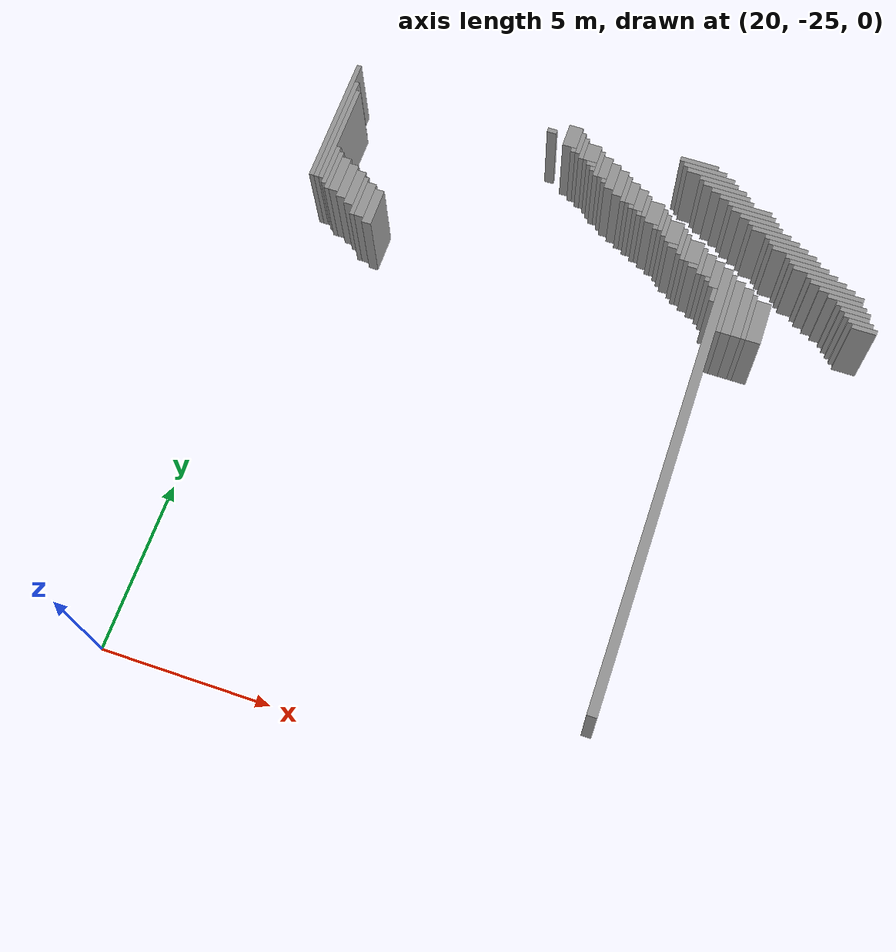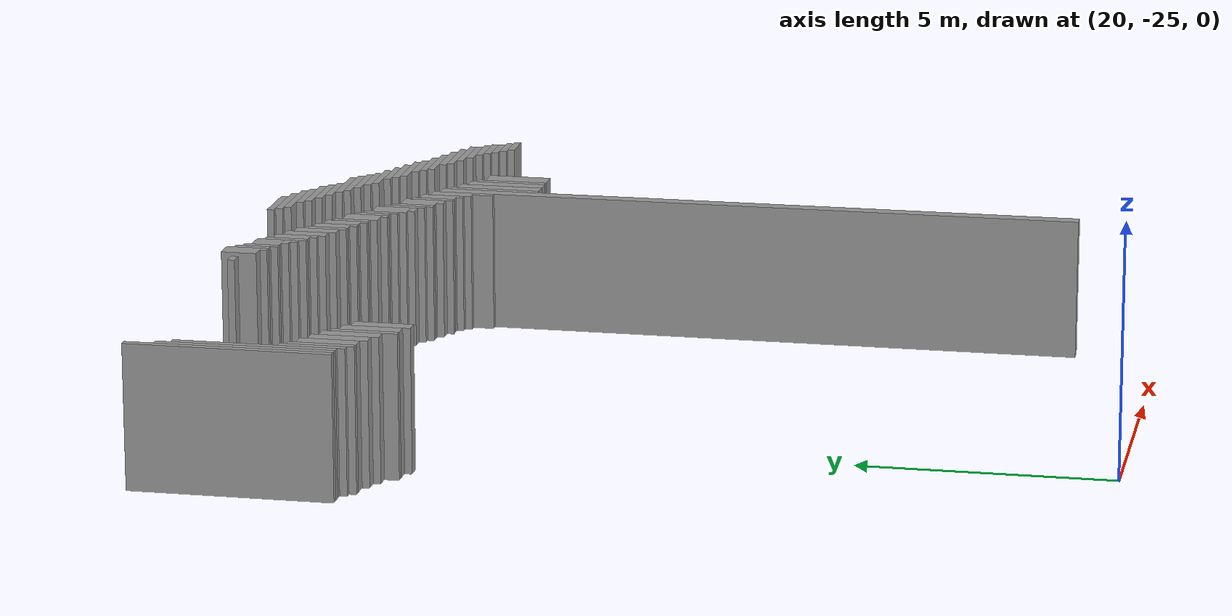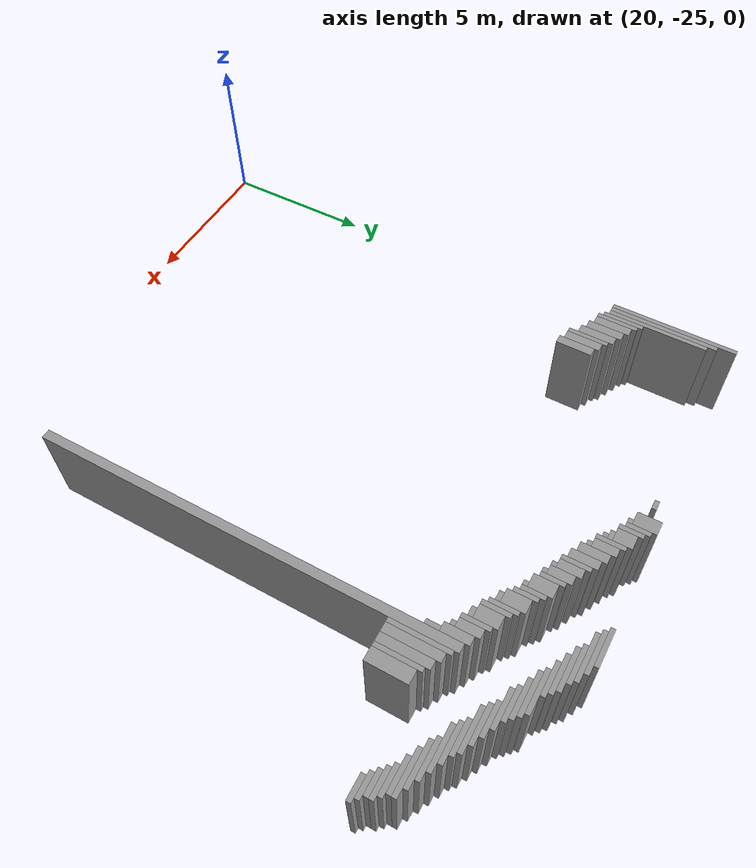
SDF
<sdf version="1.4">
 <model name="FunWorld1">
  <static>1</static>
  <link name="Wall_78">
   <collision name="Wall_78_Collision">
    <geometry><box><size>0.15000 4.20000 3.00000</size></box></geometry>
    <pose>20.47500 -7.65000 0 0 0 0.00000</pose>
   </collision>
   <visual name="Wall_78_Visual">
    <geometry><box><size>0.15000 4.20000 3.00000</size></box></geometry>
    <material>
     <script><uri>file://media/materials/scripts/gazebo.material</uri><name>Gazebo/Grey</name></script>
    </material>
    <pose>20.47500 -7.65000 0 0 0 0.00000</pose>
   </visual>
  </link>
  <link name="Wall_79">
   <collision name="Wall_79_Collision">
    <geometry><box><size>0.45000 0.75000 3.00000</size></box></geometry>
    <pose>27.67500 -5.92500 0 0 0 0.00000</pose>
   </collision>
   <visual name="Wall_79_Visual">
    <geometry><box><size>0.45000 0.75000 3.00000</size></box></geometry>
    <material>
     <script><uri>file://media/materials/scripts/gazebo.material</uri><name>Gazebo/Grey</name></script>
    </material>
    <pose>27.67500 -5.92500 0 0 0 0.00000</pose>
   </visual>
  </link>
  <link name="Wall_80">
   <collision name="Wall_80_Collision">
    <geometry><box><size>1.20000 0.15000 3.00000</size></box></geometry>
    <pose>31.65000 -5.62500 0 0 0 0.00000</pose>
   </collision>
   <visual name="Wall_80_Visual">
    <geometry><box><size>1.20000 0.15000 3.00000</size></box></geometry>
    <material>
     <script><uri>file://media/materials/scripts/gazebo.material</uri><name>Gazebo/Grey</name></script>
    </material>
    <pose>31.65000 -5.62500 0 0 0 0.00000</pose>
   </visual>
  </link>
  <link name="Wall_81">
   <collision name="Wall_81_Collision">
    <geometry><box><size>0.15000 0.75000 3.00000</size></box></geometry>
    <pose>27.97500 -6.07500 0 0 0 0.00000</pose>
   </collision>
   <visual name="Wall_81_Visual">
    <geometry><box><size>0.15000 0.75000 3.00000</size></box></geometry>
    <material>
     <script><uri>file://media/materials/scripts/gazebo.material</uri><name>Gazebo/Grey</name></script>
    </material>
    <pose>27.97500 -6.07500 0 0 0 0.00000</pose>
   </visual>
  </link>
  <link name="Wall_82">
   <collision name="Wall_82_Collision">
    <geometry><box><size>1.35000 0.15000 3.00000</size></box></geometry>
    <pose>31.87500 -5.77500 0 0 0 0.00000</pose>
   </collision>
   <visual name="Wall_82_Visual">
    <geometry><box><size>1.35000 0.15000 3.00000</size></box></geometry>
    <material>
     <script><uri>file://media/materials/scripts/gazebo.material</uri><name>Gazebo/Grey</name></script>
    </material>
    <pose>31.87500 -5.77500 0 0 0 0.00000</pose>
   </visual>
  </link>
  <link name="Wall_83">
   <collision name="Wall_83_Collision">
    <geometry><box><size>0.30000 0.15000 3.00000</size></box></geometry>
    <pose>27.00000 -5.92500 0 0 0 0.00000</pose>
   </collision>
   <visual name="Wall_83_Visual">
    <geometry><box><size>0.30000 0.15000 3.00000</size></box></geometry>
    <material>
     <script><uri>file://media/materials/scripts/gazebo.material</uri><name>Gazebo/Grey</name></script>
    </material>
    <pose>27.00000 -5.92500 0 0 0 0.00000</pose>
   </visual>
  </link>
  <link name="Wall_84">
   <collision name="Wall_84_Collision">
    <geometry><box><size>0.15000 0.75000 3.00000</size></box></geometry>
    <pose>28.12500 -6.22500 0 0 0 0.00000</pose>
   </collision>
   <visual name="Wall_84_Visual">
    <geometry><box><size>0.15000 0.75000 3.00000</size></box></geometry>
    <material>
     <script><uri>file://media/materials/scripts/gazebo.material</uri><name>Gazebo/Grey</name></script>
    </material>
    <pose>28.12500 -6.22500 0 0 0 0.00000</pose>
   </visual>
  </link>
  <link name="Wall_85">
   <collision name="Wall_85_Collision">
    <geometry><box><size>1.50000 0.15000 3.00000</size></box></geometry>
    <pose>32.10000 -5.92500 0 0 0 0.00000</pose>
   </collision>
   <visual name="Wall_85_Visual">
    <geometry><box><size>1.50000 0.15000 3.00000</size></box></geometry>
    <material>
     <script><uri>file://media/materials/scripts/gazebo.material</uri><name>Gazebo/Grey</name></script>
    </material>
    <pose>32.10000 -5.92500 0 0 0 0.00000</pose>
   </visual>
  </link>
  <link name="Wall_86">
   <collision name="Wall_86_Collision">
    <geometry><box><size>0.45000 0.60000 3.00000</size></box></geometry>
    <pose>28.42500 -6.30000 0 0 0 0.00000</pose>
   </collision>
   <visual name="Wall_86_Visual">
    <geometry><box><size>0.45000 0.60000 3.00000</size></box></geometry>
    <material>
     <script><uri>file://media/materials/scripts/gazebo.material</uri><name>Gazebo/Grey</name></script>
    </material>
    <pose>28.42500 -6.30000 0 0 0 0.00000</pose>
   </visual>
  </link>
  <link name="Wall_87">
   <collision name="Wall_87_Collision">
    <geometry><box><size>1.20000 0.15000 3.00000</size></box></geometry>
    <pose>32.40000 -6.07500 0 0 0 0.00000</pose>
   </collision>
   <visual name="Wall_87_Visual">
    <geometry><box><size>1.20000 0.15000 3.00000</size></box></geometry>
    <material>
     <script><uri>file://media/materials/scripts/gazebo.material</uri><name>Gazebo/Grey</name></script>
    </material>
    <pose>32.40000 -6.07500 0 0 0 0.00000</pose>
   </visual>
  </link>
  <link name="Wall_88">
   <collision name="Wall_88_Collision">
    <geometry><box><size>0.15000 3.60000 3.00000</size></box></geometry>
    <pose>20.62500 -7.95000 0 0 0 0.00000</pose>
   </collision>
   <visual name="Wall_88_Visual">
    <geometry><box><size>0.15000 3.60000 3.00000</size></box></geometry>
    <material>
     <script><uri>file://media/materials/scripts/gazebo.material</uri><name>Gazebo/Grey</name></script>
    </material>
    <pose>20.62500 -7.95000 0 0 0 0.00000</pose>
   </visual>
  </link>
  <link name="Wall_89">
   <collision name="Wall_89_Collision">
    <geometry><box><size>0.15000 0.90000 3.00000</size></box></geometry>
    <pose>28.72500 -6.60000 0 0 0 0.00000</pose>
   </collision>
   <visual name="Wall_89_Visual">
    <geometry><box><size>0.15000 0.90000 3.00000</size></box></geometry>
    <material>
     <script><uri>file://media/materials/scripts/gazebo.material</uri><name>Gazebo/Grey</name></script>
    </material>
    <pose>28.72500 -6.60000 0 0 0 0.00000</pose>
   </visual>
  </link>
  <link name="Wall_90">
   <collision name="Wall_90_Collision">
    <geometry><box><size>1.35000 0.15000 3.00000</size></box></geometry>
    <pose>32.62500 -6.22500 0 0 0 0.00000</pose>
   </collision>
   <visual name="Wall_90_Visual">
    <geometry><box><size>1.35000 0.15000 3.00000</size></box></geometry>
    <material>
     <script><uri>file://media/materials/scripts/gazebo.material</uri><name>Gazebo/Grey</name></script>
    </material>
    <pose>32.62500 -6.22500 0 0 0 0.00000</pose>
   </visual>
  </link>
  <link name="Wall_91">
   <collision name="Wall_91_Collision">
    <geometry><box><size>0.15000 0.15000 3.00000</size></box></geometry>
    <pose>27.82500 -6.37500 0 0 0 0.00000</pose>
   </collision>
   <visual name="Wall_91_Visual">
    <geometry><box><size>0.15000 0.15000 3.00000</size></box></geometry>
    <material>
     <script><uri>file://media/materials/scripts/gazebo.material</uri><name>Gazebo/Grey</name></script>
    </material>
    <pose>27.82500 -6.37500 0 0 0 0.00000</pose>
   </visual>
  </link>
  <link name="Wall_92">
   <collision name="Wall_92_Collision">
    <geometry><box><size>0.30000 0.75000 3.00000</size></box></geometry>
    <pose>28.95000 -6.67500 0 0 0 0.00000</pose>
   </collision>
   <visual name="Wall_92_Visual">
    <geometry><box><size>0.30000 0.75000 3.00000</size></box></geometry>
    <material>
     <script><uri>file://media/materials/scripts/gazebo.material</uri><name>Gazebo/Grey</name></script>
    </material>
    <pose>28.95000 -6.67500 0 0 0 0.00000</pose>
   </visual>
  </link>
  <link name="Wall_93">
   <collision name="Wall_93_Collision">
    <geometry><box><size>1.20000 0.15000 3.00000</size></box></geometry>
    <pose>32.85000 -6.37500 0 0 0 0.00000</pose>
   </collision>
   <visual name="Wall_93_Visual">
    <geometry><box><size>1.20000 0.15000 3.00000</size></box></geometry>
    <material>
     <script><uri>file://media/materials/scripts/gazebo.material</uri><name>Gazebo/Grey</name></script>
    </material>
    <pose>32.85000 -6.37500 0 0 0 0.00000</pose>
   </visual>
  </link>
  <link name="Wall_94">
   <collision name="Wall_94_Collision">
    <geometry><box><size>0.15000 3.30000 3.00000</size></box></geometry>
    <pose>20.77500 -8.10000 0 0 0 0.00000</pose>
   </collision>
   <visual name="Wall_94_Visual">
    <geometry><box><size>0.15000 3.30000 3.00000</size></box></geometry>
    <material>
     <script><uri>file://media/materials/scripts/gazebo.material</uri><name>Gazebo/Grey</name></script>
    </material>
    <pose>20.77500 -8.10000 0 0 0 0.00000</pose>
   </visual>
  </link>
  <link name="Wall_95">
   <collision name="Wall_95_Collision">
    <geometry><box><size>0.30000 0.90000 3.00000</size></box></geometry>
    <pose>29.25000 -6.90000 0 0 0 0.00000</pose>
   </collision>
   <visual name="Wall_95_Visual">
    <geometry><box><size>0.30000 0.90000 3.00000</size></box></geometry>
    <material>
     <script><uri>file://media/materials/scripts/gazebo.material</uri><name>Gazebo/Grey</name></script>
    </material>
    <pose>29.25000 -6.90000 0 0 0 0.00000</pose>
   </visual>
  </link>
  <link name="Wall_96">
   <collision name="Wall_96_Collision">
    <geometry><box><size>1.05000 0.15000 3.00000</size></box></geometry>
    <pose>33.07500 -6.52500 0 0 0 0.00000</pose>
   </collision>
   <visual name="Wall_96_Visual">
    <geometry><box><size>1.05000 0.15000 3.00000</size></box></geometry>
    <material>
     <script><uri>file://media/materials/scripts/gazebo.material</uri><name>Gazebo/Grey</name></script>
    </material>
    <pose>33.07500 -6.52500 0 0 0 0.00000</pose>
   </visual>
  </link>
  <link name="Wall_97">
   <collision name="Wall_97_Collision">
    <geometry><box><size>0.30000 0.15000 3.00000</size></box></geometry>
    <pose>28.50000 -6.67500 0 0 0 0.00000</pose>
   </collision>
   <visual name="Wall_97_Visual">
    <geometry><box><size>0.30000 0.15000 3.00000</size></box></geometry>
    <material>
     <script><uri>file://media/materials/scripts/gazebo.material</uri><name>Gazebo/Grey</name></script>
    </material>
    <pose>28.50000 -6.67500 0 0 0 0.00000</pose>
   </visual>
  </link>
  <link name="Wall_98">
   <collision name="Wall_98_Collision">
    <geometry><box><size>0.30000 0.90000 3.00000</size></box></geometry>
    <pose>29.55000 -7.05000 0 0 0 0.00000</pose>
   </collision>
   <visual name="Wall_98_Visual">
    <geometry><box><size>0.30000 0.90000 3.00000</size></box></geometry>
    <material>
     <script><uri>file://media/materials/scripts/gazebo.material</uri><name>Gazebo/Grey</name></script>
    </material>
    <pose>29.55000 -7.05000 0 0 0 0.00000</pose>
   </visual>
  </link>
  <link name="Wall_99">
   <collision name="Wall_99_Collision">
    <geometry><box><size>1.35000 0.15000 3.00000</size></box></geometry>
    <pose>33.52500 -6.67500 0 0 0 0.00000</pose>
   </collision>
   <visual name="Wall_99_Visual">
    <geometry><box><size>1.35000 0.15000 3.00000</size></box></geometry>
    <material>
     <script><uri>file://media/materials/scripts/gazebo.material</uri><name>Gazebo/Grey</name></script>
    </material>
    <pose>33.52500 -6.67500 0 0 0 0.00000</pose>
   </visual>
  </link>
  <link name="Wall_100">
   <collision name="Wall_100_Collision">
    <geometry><box><size>0.15000 0.15000 3.00000</size></box></geometry>
    <pose>28.57500 -6.82500 0 0 0 0.00000</pose>
   </collision>
   <visual name="Wall_100_Visual">
    <geometry><box><size>0.15000 0.15000 3.00000</size></box></geometry>
    <material>
     <script><uri>file://media/materials/scripts/gazebo.material</uri><name>Gazebo/Grey</name></script>
    </material>
    <pose>28.57500 -6.82500 0 0 0 0.00000</pose>
   </visual>
  </link>
  <link name="Wall_101">
   <collision name="Wall_101_Collision">
    <geometry><box><size>0.15000 0.90000 3.00000</size></box></geometry>
    <pose>29.77500 -7.20000 0 0 0 0.00000</pose>
   </collision>
   <visual name="Wall_101_Visual">
    <geometry><box><size>0.15000 0.90000 3.00000</size></box></geometry>
    <material>
     <script><uri>file://media/materials/scripts/gazebo.material</uri><name>Gazebo/Grey</name></script>
    </material>
    <pose>29.77500 -7.20000 0 0 0 0.00000</pose>
   </visual>
  </link>
  <link name="Wall_102">
   <collision name="Wall_102_Collision">
    <geometry><box><size>1.35000 0.15000 3.00000</size></box></geometry>
    <pose>33.67500 -6.82500 0 0 0 0.00000</pose>
   </collision>
   <visual name="Wall_102_Visual">
    <geometry><box><size>1.35000 0.15000 3.00000</size></box></geometry>
    <material>
     <script><uri>file://media/materials/scripts/gazebo.material</uri><name>Gazebo/Grey</name></script>
    </material>
    <pose>33.67500 -6.82500 0 0 0 0.00000</pose>
   </visual>
  </link>
  <link name="Wall_103">
   <collision name="Wall_103_Collision">
    <geometry><box><size>0.30000 0.75000 3.00000</size></box></geometry>
    <pose>30.00000 -7.27500 0 0 0 0.00000</pose>
   </collision>
   <visual name="Wall_103_Visual">
    <geometry><box><size>0.30000 0.75000 3.00000</size></box></geometry>
    <material>
     <script><uri>file://media/materials/scripts/gazebo.material</uri><name>Gazebo/Grey</name></script>
    </material>
    <pose>30.00000 -7.27500 0 0 0 0.00000</pose>
   </visual>
  </link>
  <link name="Wall_104">
   <collision name="Wall_104_Collision">
    <geometry><box><size>1.20000 0.15000 3.00000</size></box></geometry>
    <pose>33.90000 -6.97500 0 0 0 0.00000</pose>
   </collision>
   <visual name="Wall_104_Visual">
    <geometry><box><size>1.20000 0.15000 3.00000</size></box></geometry>
    <material>
     <script><uri>file://media/materials/scripts/gazebo.material</uri><name>Gazebo/Grey</name></script>
    </material>
    <pose>33.90000 -6.97500 0 0 0 0.00000</pose>
   </visual>
  </link>
  <link name="Wall_105">
   <collision name="Wall_105_Collision">
    <geometry><box><size>0.15000 0.15000 3.00000</size></box></geometry>
    <pose>29.02500 -7.12500 0 0 0 0.00000</pose>
   </collision>
   <visual name="Wall_105_Visual">
    <geometry><box><size>0.15000 0.15000 3.00000</size></box></geometry>
    <material>
     <script><uri>file://media/materials/scripts/gazebo.material</uri><name>Gazebo/Grey</name></script>
    </material>
    <pose>29.02500 -7.12500 0 0 0 0.00000</pose>
   </visual>
  </link>
  <link name="Wall_106">
   <collision name="Wall_106_Collision">
    <geometry><box><size>0.30000 0.75000 3.00000</size></box></geometry>
    <pose>30.30000 -7.42500 0 0 0 0.00000</pose>
   </collision>
   <visual name="Wall_106_Visual">
    <geometry><box><size>0.30000 0.75000 3.00000</size></box></geometry>
    <material>
     <script><uri>file://media/materials/scripts/gazebo.material</uri><name>Gazebo/Grey</name></script>
    </material>
    <pose>30.30000 -7.42500 0 0 0 0.00000</pose>
   </visual>
  </link>
  <link name="Wall_107">
   <collision name="Wall_107_Collision">
    <geometry><box><size>1.05000 0.15000 3.00000</size></box></geometry>
    <pose>34.12500 -7.12500 0 0 0 0.00000</pose>
   </collision>
   <visual name="Wall_107_Visual">
    <geometry><box><size>1.05000 0.15000 3.00000</size></box></geometry>
    <material>
     <script><uri>file://media/materials/scripts/gazebo.material</uri><name>Gazebo/Grey</name></script>
    </material>
    <pose>34.12500 -7.12500 0 0 0 0.00000</pose>
   </visual>
  </link>
  <link name="Wall_108">
   <collision name="Wall_108_Collision">
    <geometry><box><size>0.15000 0.75000 3.00000</size></box></geometry>
    <pose>30.52500 -7.57500 0 0 0 0.00000</pose>
   </collision>
   <visual name="Wall_108_Visual">
    <geometry><box><size>0.15000 0.75000 3.00000</size></box></geometry>
    <material>
     <script><uri>file://media/materials/scripts/gazebo.material</uri><name>Gazebo/Grey</name></script>
    </material>
    <pose>30.52500 -7.57500 0 0 0 0.00000</pose>
   </visual>
  </link>
  <link name="Wall_109">
   <collision name="Wall_109_Collision">
    <geometry><box><size>1.20000 0.15000 3.00000</size></box></geometry>
    <pose>34.35000 -7.27500 0 0 0 0.00000</pose>
   </collision>
   <visual name="Wall_109_Visual">
    <geometry><box><size>1.20000 0.15000 3.00000</size></box></geometry>
    <material>
     <script><uri>file://media/materials/scripts/gazebo.material</uri><name>Gazebo/Grey</name></script>
    </material>
    <pose>34.35000 -7.27500 0 0 0 0.00000</pose>
   </visual>
  </link>
  <link name="Wall_110">
   <collision name="Wall_110_Collision">
    <geometry><box><size>0.45000 0.75000 3.00000</size></box></geometry>
    <pose>30.82500 -7.72500 0 0 0 0.00000</pose>
   </collision>
   <visual name="Wall_110_Visual">
    <geometry><box><size>0.45000 0.75000 3.00000</size></box></geometry>
    <material>
     <script><uri>file://media/materials/scripts/gazebo.material</uri><name>Gazebo/Grey</name></script>
    </material>
    <pose>30.82500 -7.72500 0 0 0 0.00000</pose>
   </visual>
  </link>
  <link name="Wall_111">
   <collision name="Wall_111_Collision">
    <geometry><box><size>1.05000 0.15000 3.00000</size></box></geometry>
    <pose>34.72500 -7.42500 0 0 0 0.00000</pose>
   </collision>
   <visual name="Wall_111_Visual">
    <geometry><box><size>1.05000 0.15000 3.00000</size></box></geometry>
    <material>
     <script><uri>file://media/materials/scripts/gazebo.material</uri><name>Gazebo/Grey</name></script>
    </material>
    <pose>34.72500 -7.42500 0 0 0 0.00000</pose>
   </visual>
  </link>
  <link name="Wall_112">
   <collision name="Wall_112_Collision">
    <geometry><box><size>0.15000 0.75000 3.00000</size></box></geometry>
    <pose>31.12500 -7.87500 0 0 0 0.00000</pose>
   </collision>
   <visual name="Wall_112_Visual">
    <geometry><box><size>0.15000 0.75000 3.00000</size></box></geometry>
    <material>
     <script><uri>file://media/materials/scripts/gazebo.material</uri><name>Gazebo/Grey</name></script>
    </material>
    <pose>31.12500 -7.87500 0 0 0 0.00000</pose>
   </visual>
  </link>
  <link name="Wall_113">
   <collision name="Wall_113_Collision">
    <geometry><box><size>1.20000 0.15000 3.00000</size></box></geometry>
    <pose>34.95000 -7.57500 0 0 0 0.00000</pose>
   </collision>
   <visual name="Wall_113_Visual">
    <geometry><box><size>1.20000 0.15000 3.00000</size></box></geometry>
    <material>
     <script><uri>file://media/materials/scripts/gazebo.material</uri><name>Gazebo/Grey</name></script>
    </material>
    <pose>34.95000 -7.57500 0 0 0 0.00000</pose>
   </visual>
  </link>
  <link name="Wall_114">
   <collision name="Wall_114_Collision">
    <geometry><box><size>0.15000 0.15000 3.00000</size></box></geometry>
    <pose>30.07500 -7.72500 0 0 0 0.00000</pose>
   </collision>
   <visual name="Wall_114_Visual">
    <geometry><box><size>0.15000 0.15000 3.00000</size></box></geometry>
    <material>
     <script><uri>file://media/materials/scripts/gazebo.material</uri><name>Gazebo/Grey</name></script>
    </material>
    <pose>30.07500 -7.72500 0 0 0 0.00000</pose>
   </visual>
  </link>
  <link name="Wall_115">
   <collision name="Wall_115_Collision">
    <geometry><box><size>0.15000 0.75000 3.00000</size></box></geometry>
    <pose>31.27500 -8.02500 0 0 0 0.00000</pose>
   </collision>
   <visual name="Wall_115_Visual">
    <geometry><box><size>0.15000 0.75000 3.00000</size></box></geometry>
    <material>
     <script><uri>file://media/materials/scripts/gazebo.material</uri><name>Gazebo/Grey</name></script>
    </material>
    <pose>31.27500 -8.02500 0 0 0 0.00000</pose>
   </visual>
  </link>
  <link name="Wall_116">
   <collision name="Wall_116_Collision">
    <geometry><box><size>1.35000 0.15000 3.00000</size></box></geometry>
    <pose>35.17500 -7.72500 0 0 0 0.00000</pose>
   </collision>
   <visual name="Wall_116_Visual">
    <geometry><box><size>1.35000 0.15000 3.00000</size></box></geometry>
    <material>
     <script><uri>file://media/materials/scripts/gazebo.material</uri><name>Gazebo/Grey</name></script>
    </material>
    <pose>35.17500 -7.72500 0 0 0 0.00000</pose>
   </visual>
  </link>
  <link name="Wall_117">
   <collision name="Wall_117_Collision">
    <geometry><box><size>0.15000 0.15000 3.00000</size></box></geometry>
    <pose>30.37500 -7.87500 0 0 0 0.00000</pose>
   </collision>
   <visual name="Wall_117_Visual">
    <geometry><box><size>0.15000 0.15000 3.00000</size></box></geometry>
    <material>
     <script><uri>file://media/materials/scripts/gazebo.material</uri><name>Gazebo/Grey</name></script>
    </material>
    <pose>30.37500 -7.87500 0 0 0 0.00000</pose>
   </visual>
  </link>
  <link name="Wall_118">
   <collision name="Wall_118_Collision">
    <geometry><box><size>0.45000 0.75000 3.00000</size></box></geometry>
    <pose>31.57500 -8.17500 0 0 0 0.00000</pose>
   </collision>
   <visual name="Wall_118_Visual">
    <geometry><box><size>0.45000 0.75000 3.00000</size></box></geometry>
    <material>
     <script><uri>file://media/materials/scripts/gazebo.material</uri><name>Gazebo/Grey</name></script>
    </material>
    <pose>31.57500 -8.17500 0 0 0 0.00000</pose>
   </visual>
  </link>
  <link name="Wall_119">
   <collision name="Wall_119_Collision">
    <geometry><box><size>1.05000 0.15000 3.00000</size></box></geometry>
    <pose>35.47500 -7.87500 0 0 0 0.00000</pose>
   </collision>
   <visual name="Wall_119_Visual">
    <geometry><box><size>1.05000 0.15000 3.00000</size></box></geometry>
    <material>
     <script><uri>file://media/materials/scripts/gazebo.material</uri><name>Gazebo/Grey</name></script>
    </material>
    <pose>35.47500 -7.87500 0 0 0 0.00000</pose>
   </visual>
  </link>
  <link name="Wall_120">
   <collision name="Wall_120_Collision">
    <geometry><box><size>0.15000 0.90000 3.00000</size></box></geometry>
    <pose>31.87500 -8.40000 0 0 0 0.00000</pose>
   </collision>
   <visual name="Wall_120_Visual">
    <geometry><box><size>0.15000 0.90000 3.00000</size></box></geometry>
    <material>
     <script><uri>file://media/materials/scripts/gazebo.material</uri><name>Gazebo/Grey</name></script>
    </material>
    <pose>31.87500 -8.40000 0 0 0 0.00000</pose>
   </visual>
  </link>
  <link name="Wall_121">
   <collision name="Wall_121_Collision">
    <geometry><box><size>1.20000 0.15000 3.00000</size></box></geometry>
    <pose>35.70000 -8.02500 0 0 0 0.00000</pose>
   </collision>
   <visual name="Wall_121_Visual">
    <geometry><box><size>1.20000 0.15000 3.00000</size></box></geometry>
    <material>
     <script><uri>file://media/materials/scripts/gazebo.material</uri><name>Gazebo/Grey</name></script>
    </material>
    <pose>35.70000 -8.02500 0 0 0 0.00000</pose>
   </visual>
  </link>
  <link name="Wall_122">
   <collision name="Wall_122_Collision">
    <geometry><box><size>0.15000 0.15000 3.00000</size></box></geometry>
    <pose>30.97500 -8.17500 0 0 0 0.00000</pose>
   </collision>
   <visual name="Wall_122_Visual">
    <geometry><box><size>0.15000 0.15000 3.00000</size></box></geometry>
    <material>
     <script><uri>file://media/materials/scripts/gazebo.material</uri><name>Gazebo/Grey</name></script>
    </material>
    <pose>30.97500 -8.17500 0 0 0 0.00000</pose>
   </visual>
  </link>
  <link name="Wall_123">
   <collision name="Wall_123_Collision">
    <geometry><box><size>0.15000 0.90000 3.00000</size></box></geometry>
    <pose>32.02500 -8.55000 0 0 0 0.00000</pose>
   </collision>
   <visual name="Wall_123_Visual">
    <geometry><box><size>0.15000 0.90000 3.00000</size></box></geometry>
    <material>
     <script><uri>file://media/materials/scripts/gazebo.material</uri><name>Gazebo/Grey</name></script>
    </material>
    <pose>32.02500 -8.55000 0 0 0 0.00000</pose>
   </visual>
  </link>
  <link name="Wall_124">
   <collision name="Wall_124_Collision">
    <geometry><box><size>1.35000 0.15000 3.00000</size></box></geometry>
    <pose>35.92500 -8.17500 0 0 0 0.00000</pose>
   </collision>
   <visual name="Wall_124_Visual">
    <geometry><box><size>1.35000 0.15000 3.00000</size></box></geometry>
    <material>
     <script><uri>file://media/materials/scripts/gazebo.material</uri><name>Gazebo/Grey</name></script>
    </material>
    <pose>35.92500 -8.17500 0 0 0 0.00000</pose>
   </visual>
  </link>
  <link name="Wall_125">
   <collision name="Wall_125_Collision">
    <geometry><box><size>0.45000 0.75000 3.00000</size></box></geometry>
    <pose>32.32500 -8.62500 0 0 0 0.00000</pose>
   </collision>
   <visual name="Wall_125_Visual">
    <geometry><box><size>0.45000 0.75000 3.00000</size></box></geometry>
    <material>
     <script><uri>file://media/materials/scripts/gazebo.material</uri><name>Gazebo/Grey</name></script>
    </material>
    <pose>32.32500 -8.62500 0 0 0 0.00000</pose>
   </visual>
  </link>
  <link name="Wall_126">
   <collision name="Wall_126_Collision">
    <geometry><box><size>1.20000 0.15000 3.00000</size></box></geometry>
    <pose>36.30000 -8.32500 0 0 0 0.00000</pose>
   </collision>
   <visual name="Wall_126_Visual">
    <geometry><box><size>1.20000 0.15000 3.00000</size></box></geometry>
    <material>
     <script><uri>file://media/materials/scripts/gazebo.material</uri><name>Gazebo/Grey</name></script>
    </material>
    <pose>36.30000 -8.32500 0 0 0 0.00000</pose>
   </visual>
  </link>
  <link name="Wall_127">
   <collision name="Wall_127_Collision">
    <geometry><box><size>0.15000 0.90000 3.00000</size></box></geometry>
    <pose>32.62500 -8.85000 0 0 0 0.00000</pose>
   </collision>
   <visual name="Wall_127_Visual">
    <geometry><box><size>0.15000 0.90000 3.00000</size></box></geometry>
    <material>
     <script><uri>file://media/materials/scripts/gazebo.material</uri><name>Gazebo/Grey</name></script>
    </material>
    <pose>32.62500 -8.85000 0 0 0 0.00000</pose>
   </visual>
  </link>
  <link name="Wall_128">
   <collision name="Wall_128_Collision">
    <geometry><box><size>1.35000 0.15000 3.00000</size></box></geometry>
    <pose>36.52500 -8.47500 0 0 0 0.00000</pose>
   </collision>
   <visual name="Wall_128_Visual">
    <geometry><box><size>1.35000 0.15000 3.00000</size></box></geometry>
    <material>
     <script><uri>file://media/materials/scripts/gazebo.material</uri><name>Gazebo/Grey</name></script>
    </material>
    <pose>36.52500 -8.47500 0 0 0 0.00000</pose>
   </visual>
  </link>
  <link name="Wall_129">
   <collision name="Wall_129_Collision">
    <geometry><box><size>0.15000 1.35000 3.00000</size></box></geometry>
    <pose>20.92500 -9.22500 0 0 0 0.00000</pose>
   </collision>
   <visual name="Wall_129_Visual">
    <geometry><box><size>0.15000 1.35000 3.00000</size></box></geometry>
    <material>
     <script><uri>file://media/materials/scripts/gazebo.material</uri><name>Gazebo/Grey</name></script>
    </material>
    <pose>20.92500 -9.22500 0 0 0 0.00000</pose>
   </visual>
  </link>
  <link name="Wall_130">
   <collision name="Wall_130_Collision">
    <geometry><box><size>0.30000 0.15000 3.00000</size></box></geometry>
    <pose>31.65000 -8.62500 0 0 0 0.00000</pose>
   </collision>
   <visual name="Wall_130_Visual">
    <geometry><box><size>0.30000 0.15000 3.00000</size></box></geometry>
    <material>
     <script><uri>file://media/materials/scripts/gazebo.material</uri><name>Gazebo/Grey</name></script>
    </material>
    <pose>31.65000 -8.62500 0 0 0 0.00000</pose>
   </visual>
  </link>
  <link name="Wall_131">
   <collision name="Wall_131_Collision">
    <geometry><box><size>0.30000 0.75000 3.00000</size></box></geometry>
    <pose>32.85000 -8.92500 0 0 0 0.00000</pose>
   </collision>
   <visual name="Wall_131_Visual">
    <geometry><box><size>0.30000 0.75000 3.00000</size></box></geometry>
    <material>
     <script><uri>file://media/materials/scripts/gazebo.material</uri><name>Gazebo/Grey</name></script>
    </material>
    <pose>32.85000 -8.92500 0 0 0 0.00000</pose>
   </visual>
  </link>
  <link name="Wall_132">
   <collision name="Wall_132_Collision">
    <geometry><box><size>1.35000 0.15000 3.00000</size></box></geometry>
    <pose>36.82500 -8.62500 0 0 0 0.00000</pose>
   </collision>
   <visual name="Wall_132_Visual">
    <geometry><box><size>1.35000 0.15000 3.00000</size></box></geometry>
    <material>
     <script><uri>file://media/materials/scripts/gazebo.material</uri><name>Gazebo/Grey</name></script>
    </material>
    <pose>36.82500 -8.62500 0 0 0 0.00000</pose>
   </visual>
  </link>
  <link name="Wall_133">
   <collision name="Wall_133_Collision">
    <geometry><box><size>0.15000 1.35000 3.00000</size></box></geometry>
    <pose>21.07500 -9.37500 0 0 0 0.00000</pose>
   </collision>
   <visual name="Wall_133_Visual">
    <geometry><box><size>0.15000 1.35000 3.00000</size></box></geometry>
    <material>
     <script><uri>file://media/materials/scripts/gazebo.material</uri><name>Gazebo/Grey</name></script>
    </material>
    <pose>21.07500 -9.37500 0 0 0 0.00000</pose>
   </visual>
  </link>
  <link name="Wall_134">
   <collision name="Wall_134_Collision">
    <geometry><box><size>0.30000 0.90000 3.00000</size></box></geometry>
    <pose>33.15000 -9.15000 0 0 0 0.00000</pose>
   </collision>
   <visual name="Wall_134_Visual">
    <geometry><box><size>0.30000 0.90000 3.00000</size></box></geometry>
    <material>
     <script><uri>file://media/materials/scripts/gazebo.material</uri><name>Gazebo/Grey</name></script>
    </material>
    <pose>33.15000 -9.15000 0 0 0 0.00000</pose>
   </visual>
  </link>
  <link name="Wall_135">
   <collision name="Wall_135_Collision">
    <geometry><box><size>1.05000 0.15000 3.00000</size></box></geometry>
    <pose>36.97500 -8.77500 0 0 0 0.00000</pose>
   </collision>
   <visual name="Wall_135_Visual">
    <geometry><box><size>1.05000 0.15000 3.00000</size></box></geometry>
    <material>
     <script><uri>file://media/materials/scripts/gazebo.material</uri><name>Gazebo/Grey</name></script>
    </material>
    <pose>36.97500 -8.77500 0 0 0 0.00000</pose>
   </visual>
  </link>
  <link name="Wall_136">
   <collision name="Wall_136_Collision">
    <geometry><box><size>0.30000 1.20000 3.00000</size></box></geometry>
    <pose>21.30000 -9.45000 0 0 0 0.00000</pose>
   </collision>
   <visual name="Wall_136_Visual">
    <geometry><box><size>0.30000 1.20000 3.00000</size></box></geometry>
    <material>
     <script><uri>file://media/materials/scripts/gazebo.material</uri><name>Gazebo/Grey</name></script>
    </material>
    <pose>21.30000 -9.45000 0 0 0 0.00000</pose>
   </visual>
  </link>
  <link name="Wall_137">
   <collision name="Wall_137_Collision">
    <geometry><box><size>0.30000 13.95000 3.00000</size></box></geometry>
    <pose>33.45000 -15.82500 0 0 0 0.00000</pose>
   </collision>
   <visual name="Wall_137_Visual">
    <geometry><box><size>0.30000 13.95000 3.00000</size></box></geometry>
    <material>
     <script><uri>file://media/materials/scripts/gazebo.material</uri><name>Gazebo/Grey</name></script>
    </material>
    <pose>33.45000 -15.82500 0 0 0 0.00000</pose>
   </visual>
  </link>
  <link name="Wall_138">
   <collision name="Wall_138_Collision">
    <geometry><box><size>0.90000 0.15000 3.00000</size></box></geometry>
    <pose>37.20000 -8.92500 0 0 0 0.00000</pose>
   </collision>
   <visual name="Wall_138_Visual">
    <geometry><box><size>0.90000 0.15000 3.00000</size></box></geometry>
    <material>
     <script><uri>file://media/materials/scripts/gazebo.material</uri><name>Gazebo/Grey</name></script>
    </material>
    <pose>37.20000 -8.92500 0 0 0 0.00000</pose>
   </visual>
  </link>
  <link name="Wall_139">
   <collision name="Wall_139_Collision">
    <geometry><box><size>0.30000 1.20000 3.00000</size></box></geometry>
    <pose>21.60000 -9.60000 0 0 0 0.00000</pose>
   </collision>
   <visual name="Wall_139_Visual">
    <geometry><box><size>0.30000 1.20000 3.00000</size></box></geometry>
    <material>
     <script><uri>file://media/materials/scripts/gazebo.material</uri><name>Gazebo/Grey</name></script>
    </material>
    <pose>21.60000 -9.60000 0 0 0 0.00000</pose>
   </visual>
  </link>
  <link name="Wall_140">
   <collision name="Wall_140_Collision">
    <geometry><box><size>0.30000 0.15000 3.00000</size></box></geometry>
    <pose>32.40000 -9.07500 0 0 0 0.00000</pose>
   </collision>
   <visual name="Wall_140_Visual">
    <geometry><box><size>0.30000 0.15000 3.00000</size></box></geometry>
    <material>
     <script><uri>file://media/materials/scripts/gazebo.material</uri><name>Gazebo/Grey</name></script>
    </material>
    <pose>32.40000 -9.07500 0 0 0 0.00000</pose>
   </visual>
  </link>
  <link name="Wall_141">
   <collision name="Wall_141_Collision">
    <geometry><box><size>0.15000 1.95000 3.00000</size></box></geometry>
    <pose>33.67500 -9.97500 0 0 0 0.00000</pose>
   </collision>
   <visual name="Wall_141_Visual">
    <geometry><box><size>0.15000 1.95000 3.00000</size></box></geometry>
    <material>
     <script><uri>file://media/materials/scripts/gazebo.material</uri><name>Gazebo/Grey</name></script>
    </material>
    <pose>33.67500 -9.97500 0 0 0 0.00000</pose>
   </visual>
  </link>
  <link name="Wall_142">
   <collision name="Wall_142_Collision">
    <geometry><box><size>0.90000 0.15000 3.00000</size></box></geometry>
    <pose>37.35000 -9.07500 0 0 0 0.00000</pose>
   </collision>
   <visual name="Wall_142_Visual">
    <geometry><box><size>0.90000 0.15000 3.00000</size></box></geometry>
    <material>
     <script><uri>file://media/materials/scripts/gazebo.material</uri><name>Gazebo/Grey</name></script>
    </material>
    <pose>37.35000 -9.07500 0 0 0 0.00000</pose>
   </visual>
  </link>
  <link name="Wall_143">
   <collision name="Wall_143_Collision">
    <geometry><box><size>0.30000 1.20000 3.00000</size></box></geometry>
    <pose>21.90000 -9.75000 0 0 0 0.00000</pose>
   </collision>
   <visual name="Wall_143_Visual">
    <geometry><box><size>0.30000 1.20000 3.00000</size></box></geometry>
    <material>
     <script><uri>file://media/materials/scripts/gazebo.material</uri><name>Gazebo/Grey</name></script>
    </material>
    <pose>21.90000 -9.75000 0 0 0 0.00000</pose>
   </visual>
  </link>
  <link name="Wall_144">
   <collision name="Wall_144_Collision">
    <geometry><box><size>0.30000 1.80000 3.00000</size></box></geometry>
    <pose>33.90000 -10.05000 0 0 0 0.00000</pose>
   </collision>
   <visual name="Wall_144_Visual">
    <geometry><box><size>0.30000 1.80000 3.00000</size></box></geometry>
    <material>
     <script><uri>file://media/materials/scripts/gazebo.material</uri><name>Gazebo/Grey</name></script>
    </material>
    <pose>33.90000 -10.05000 0 0 0 0.00000</pose>
   </visual>
  </link>
  <link name="Wall_145">
   <collision name="Wall_145_Collision">
    <geometry><box><size>0.75000 0.15000 3.00000</size></box></geometry>
    <pose>37.42500 -9.22500 0 0 0 0.00000</pose>
   </collision>
   <visual name="Wall_145_Visual">
    <geometry><box><size>0.75000 0.15000 3.00000</size></box></geometry>
    <material>
     <script><uri>file://media/materials/scripts/gazebo.material</uri><name>Gazebo/Grey</name></script>
    </material>
    <pose>37.42500 -9.22500 0 0 0 0.00000</pose>
   </visual>
  </link>
  <link name="Wall_146">
   <collision name="Wall_146_Collision">
    <geometry><box><size>0.15000 1.35000 3.00000</size></box></geometry>
    <pose>22.12500 -9.97500 0 0 0 0.00000</pose>
   </collision>
   <visual name="Wall_146_Visual">
    <geometry><box><size>0.15000 1.35000 3.00000</size></box></geometry>
    <material>
     <script><uri>file://media/materials/scripts/gazebo.material</uri><name>Gazebo/Grey</name></script>
    </material>
    <pose>22.12500 -9.97500 0 0 0 0.00000</pose>
   </visual>
  </link>
  <link name="Wall_147">
   <collision name="Wall_147_Collision">
    <geometry><box><size>0.15000 0.15000 3.00000</size></box></geometry>
    <pose>32.92500 -9.37500 0 0 0 0.00000</pose>
   </collision>
   <visual name="Wall_147_Visual">
    <geometry><box><size>0.15000 0.15000 3.00000</size></box></geometry>
    <material>
     <script><uri>file://media/materials/scripts/gazebo.material</uri><name>Gazebo/Grey</name></script>
    </material>
    <pose>32.92500 -9.37500 0 0 0 0.00000</pose>
   </visual>
  </link>
  <link name="Wall_148">
   <collision name="Wall_148_Collision">
    <geometry><box><size>0.30000 1.65000 3.00000</size></box></geometry>
    <pose>34.20000 -10.12500 0 0 0 0.00000</pose>
   </collision>
   <visual name="Wall_148_Visual">
    <geometry><box><size>0.30000 1.65000 3.00000</size></box></geometry>
    <material>
     <script><uri>file://media/materials/scripts/gazebo.material</uri><name>Gazebo/Grey</name></script>
    </material>
    <pose>34.20000 -10.12500 0 0 0 0.00000</pose>
   </visual>
  </link>
  <link name="Wall_149">
   <collision name="Wall_149_Collision">
    <geometry><box><size>0.75000 0.15000 3.00000</size></box></geometry>
    <pose>37.57500 -9.37500 0 0 0 0.00000</pose>
   </collision>
   <visual name="Wall_149_Visual">
    <geometry><box><size>0.75000 0.15000 3.00000</size></box></geometry>
    <material>
     <script><uri>file://media/materials/scripts/gazebo.material</uri><name>Gazebo/Grey</name></script>
    </material>
    <pose>37.57500 -9.37500 0 0 0 0.00000</pose>
   </visual>
  </link>
  <link name="Wall_150">
   <collision name="Wall_150_Collision">
    <geometry><box><size>0.30000 1.20000 3.00000</size></box></geometry>
    <pose>22.35000 -10.05000 0 0 0 0.00000</pose>
   </collision>
   <visual name="Wall_150_Visual">
    <geometry><box><size>0.30000 1.20000 3.00000</size></box></geometry>
    <material>
     <script><uri>file://media/materials/scripts/gazebo.material</uri><name>Gazebo/Grey</name></script>
    </material>
    <pose>22.35000 -10.05000 0 0 0 0.00000</pose>
   </visual>
  </link>
  <link name="Wall_151">
   <collision name="Wall_151_Collision">
    <geometry><box><size>0.15000 1.50000 3.00000</size></box></geometry>
    <pose>34.42500 -10.20000 0 0 0 0.00000</pose>
   </collision>
   <visual name="Wall_151_Visual">
    <geometry><box><size>0.15000 1.50000 3.00000</size></box></geometry>
    <material>
     <script><uri>file://media/materials/scripts/gazebo.material</uri><name>Gazebo/Grey</name></script>
    </material>
    <pose>34.42500 -10.20000 0 0 0 0.00000</pose>
   </visual>
  </link>
  <link name="Wall_152">
   <collision name="Wall_152_Collision">
    <geometry><box><size>0.75000 0.15000 3.00000</size></box></geometry>
    <pose>37.72500 -9.52500 0 0 0 0.00000</pose>
   </collision>
   <visual name="Wall_152_Visual">
    <geometry><box><size>0.75000 0.15000 3.00000</size></box></geometry>
    <material>
     <script><uri>file://media/materials/scripts/gazebo.material</uri><name>Gazebo/Grey</name></script>
    </material>
    <pose>37.72500 -9.52500 0 0 0 0.00000</pose>
   </visual>
  </link>
  <link name="Wall_153">
   <collision name="Wall_153_Collision">
    <geometry><box><size>0.30000 1.20000 3.00000</size></box></geometry>
    <pose>22.65000 -10.20000 0 0 0 0.00000</pose>
   </collision>
   <visual name="Wall_153_Visual">
    <geometry><box><size>0.30000 1.20000 3.00000</size></box></geometry>
    <material>
     <script><uri>file://media/materials/scripts/gazebo.material</uri><name>Gazebo/Grey</name></script>
    </material>
    <pose>22.65000 -10.20000 0 0 0 0.00000</pose>
   </visual>
  </link>
  <link name="Wall_154">
   <collision name="Wall_154_Collision">
    <geometry><box><size>0.15000 0.45000 3.00000</size></box></geometry>
    <pose>33.22500 -9.82500 0 0 0 0.00000</pose>
   </collision>
   <visual name="Wall_154_Visual">
    <geometry><box><size>0.15000 0.45000 3.00000</size></box></geometry>
    <material>
     <script><uri>file://media/materials/scripts/gazebo.material</uri><name>Gazebo/Grey</name></script>
    </material>
    <pose>33.22500 -9.82500 0 0 0 0.00000</pose>
   </visual>
  </link>
  <link name="Wall_155">
   <collision name="Wall_155_Collision">
    <geometry><box><size>0.45000 1.35000 3.00000</size></box></geometry>
    <pose>34.72500 -10.27500 0 0 0 0.00000</pose>
   </collision>
   <visual name="Wall_155_Visual">
    <geometry><box><size>0.45000 1.35000 3.00000</size></box></geometry>
    <material>
     <script><uri>file://media/materials/scripts/gazebo.material</uri><name>Gazebo/Grey</name></script>
    </material>
    <pose>34.72500 -10.27500 0 0 0 0.00000</pose>
   </visual>
  </link>
 </model>
</sdf>
